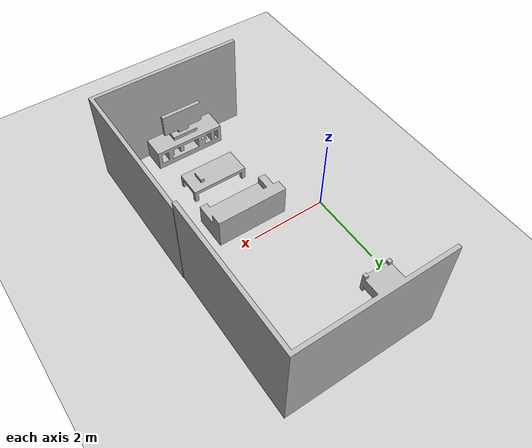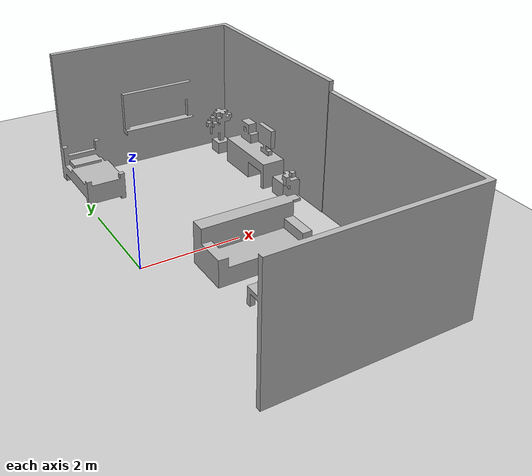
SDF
<sdf version='1.6'>
  <world name='default'>
    <light name='sun' type='directional'>
      <cast_shadows>1</cast_shadows>
      <pose frame=''>0 0 10 0 -0 0</pose>
      <diffuse>0.8 0.8 0.8 1</diffuse>
      <specular>0.1 0.1 0.1 1</specular>
      <attenuation>
        <range>1000</range>
        <constant>0.9</constant>
        <linear>0.01</linear>
        <quadratic>0.001</quadratic>
      </attenuation>
      <direction>-0.5 0.5 -1</direction>
    </light>
    <gravity>0 0 -9.8</gravity>
    <magnetic_field>6e-06 2.3e-05 -4.2e-05</magnetic_field>
    <atmosphere type='adiabatic'/>
    <physics name='default_physics' default='0' type='ode'>
      <max_step_size>0.01</max_step_size>
      <real_time_factor>1</real_time_factor>
      <real_time_update_rate>100</real_time_update_rate>
      <ode>
        <solver>
          <type>quick</type>
          <iters>100</iters>
          <precon_iters>0</precon_iters>
          <sor>1</sor>
          <use_dynamic_moi_rescaling>0</use_dynamic_moi_rescaling>
        </solver>
        <constraints>
          <cfm>0</cfm>
          <erp>0.5</erp>
          <contact_max_correcting_vel>1000</contact_max_correcting_vel>
          <contact_surface_layer>0</contact_surface_layer>
        </constraints>
      </ode>
    </physics>
    <scene>
      <ambient>0.4 0.4 0.4 1</ambient>
      <background>0.7 0.7 0.7 1</background>
      <shadows>0</shadows>
    </scene>
    <spherical_coordinates>
      <surface_model>EARTH_WGS84</surface_model>
      <latitude_deg>0</latitude_deg>
      <longitude_deg>0</longitude_deg>
      <elevation>0</elevation>
      <heading_deg>0</heading_deg>
    </spherical_coordinates>

    <gui fullscreen='0'>
      <camera name='user_camera'>
        <pose frame=''>2.55275 -3.09024 14.5731 0 1.5458 1.08595</pose>
        <view_controller>orbit</view_controller>
        <projection_type>perspective</projection_type>
      </camera>
    </gui>

    <model name='neobotix_ground_plane'>
      <static>1</static>
      <link name='link'>
        <collision name='collision'>
          <geometry>
            <plane>
              <normal>0 0 1</normal>
              <size>100 100</size>
            </plane>
          </geometry>
          <surface>
            <friction>
              <ode>
                <mu>100</mu>
                <mu2>50</mu2>
              </ode>
              <torsional>
                <ode/>
              </torsional>
            </friction>
            <contact>
              <ode/>
            </contact>
            <bounce/>
          </surface>
          <max_contacts>10</max_contacts>
        </collision>
        <visual name='visual'>
          <cast_shadows>0</cast_shadows>
          <geometry>
            <plane>
              <normal>0 0 1</normal>
              <size>100 100</size>
            </plane>
          </geometry>
          <material>
            <script>
              <uri>model://neobotix_ground_plane/materials/scripts</uri>
              <uri>model://neobotix_ground_plane/materials/textures/</uri>
              <name>NeobotixGroundPlane/Image</name>
            </script>
          </material>
        </visual>
        <self_collide>0</self_collide>
        <kinematic>0</kinematic>
        <gravity>1</gravity>
        <enable_wind>0</enable_wind>
      </link>
      <pose frame=''>15.5395 -0.113375 0 0 -0 0</pose>
    </model>

    <include>
      <uri>model://simple_voxel_room</uri>
      <pose>0 0 -0.251594 0 0 0</pose>
    </include>

    <light name='user_point_light_0' type='point'>
      <pose frame=''>-3.57672 4.80444 1 0 -0 0</pose>
      <diffuse>0.5 0.5 0.5 1</diffuse>
      <specular>0.1 0.1 0.1 1</specular>
      <attenuation>
        <range>20</range>
        <constant>0.5</constant>
        <linear>0.01</linear>
        <quadratic>0.001</quadratic>
      </attenuation>
      <cast_shadows>0</cast_shadows>
      <direction>0 0 -1</direction>
    </light>
    <light name='user_point_light_1' type='point'>
      <pose frame=''>6.41054 -3.35763 1 0 -0 0</pose>
      <diffuse>0.5 0.5 0.5 1</diffuse>
      <specular>0.1 0.1 0.1 1</specular>
      <attenuation>
        <range>20</range>
        <constant>0.5</constant>
        <linear>0.01</linear>
        <quadratic>0.001</quadratic>
      </attenuation>
      <cast_shadows>0</cast_shadows>
      <direction>0 0 -1</direction>
    </light>
    <light name='user_point_light_2' type='point'>
      <pose frame=''>-10.9222 -10.872 1 0 -0 0</pose>
      <diffuse>0.5 0.5 0.5 1</diffuse>
      <specular>0.1 0.1 0.1 1</specular>
      <attenuation>
        <range>20</range>
        <constant>0.5</constant>
        <linear>0.01</linear>
        <quadratic>0.001</quadratic>
      </attenuation>
      <cast_shadows>0</cast_shadows>
      <direction>0 0 -1</direction>
    </light>
    <light name='user_point_light_3' type='point'>
      <pose frame=''>0.760989 2.12463 1 0 -0 0</pose>
      <diffuse>0.5 0.5 0.5 1</diffuse>
      <specular>0.1 0.1 0.1 1</specular>
      <attenuation>
        <range>20</range>
        <constant>0.5</constant>
        <linear>0.01</linear>
        <quadratic>0.001</quadratic>
      </attenuation>
      <cast_shadows>0</cast_shadows>
      <direction>0 0 -1</direction>
    </light>
    <audio>
      <device>default</device>
    </audio>
    <wind/>

  </world>
</sdf>

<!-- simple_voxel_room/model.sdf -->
<sdf version='1.6'>
  <model name='simple_voxel_room'>
    <link name='link_1'>
         <visual name='visual'>
        <pose frame=''>0 0 0 0 -0 0</pose>
        <geometry>
          <mesh>
            <uri>model://simple_voxel_room/meshes/simple_voxel_room_fix.dae</uri>
            <scale>1 1 1</scale>
          </mesh>
        </geometry>
        <cast_shadows>0</cast_shadows>
        <transparency>0</transparency>
      </visual>
      <collision name='collision'>
        <laser_retro>0</laser_retro>
        <max_contacts>10</max_contacts>
        <pose frame=''>0 0 0 0 -0 0</pose>
        <geometry>
          <mesh>
            <uri>model://simple_voxel_room/meshes/simple_voxel_room_fix.dae</uri>
            <scale>1 1 1</scale>
          </mesh>
        </geometry>
     </collision>
    </link>

    <static>1</static>
    <allow_auto_disable>1</allow_auto_disable>
  </model>
</sdf>
